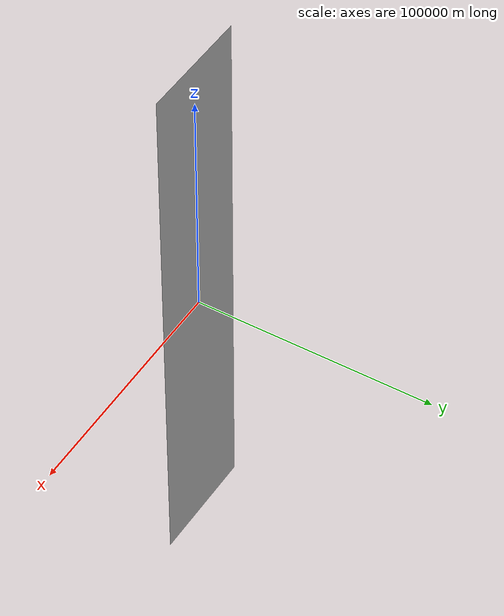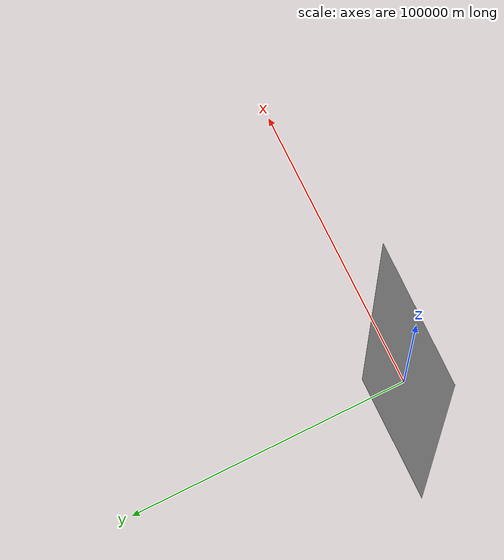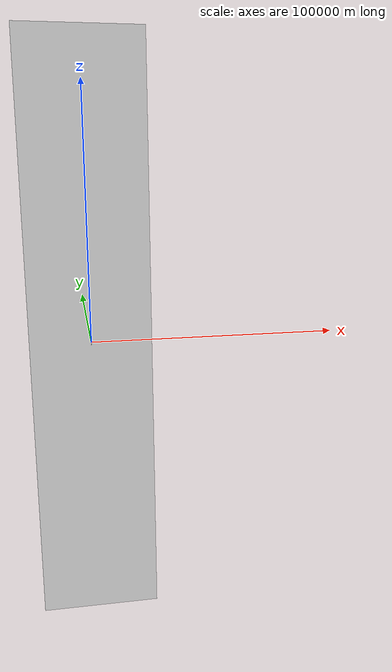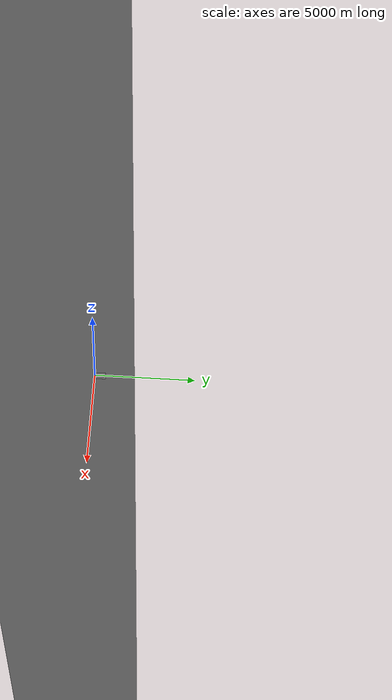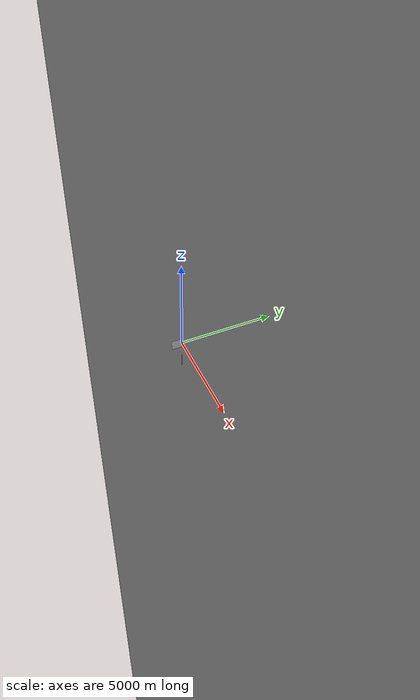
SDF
<sdf version="1.7">
 <world name="default">
  <gravity>0 0 -9.8</gravity>
  <physics name="default_physics" default="0" type="ode">
   <max_step_size>0.001</max_step_size>
   <real_time_factor>1</real_time_factor>
   <real_time_update_rate>1000</real_time_update_rate>
  </physics>
  <light name="Warehouse_CeilingLight_003" type="point">
   <pose>0 0 9 0 -0 0</pose>
   <diffuse>0.5 0.5 0.5 1</diffuse>
   <specular>0.2 0.2 0.2 1</specular>
   <attenuation>
    <range>80</range>
    <constant>0.3</constant>
    <linear>0.01</linear>
    <quadratic>0.001</quadratic>
   </attenuation>
   <direction>0.1 0.1 -1</direction>
   <spot><inner_angle>0</inner_angle><outer_angle>0</outer_angle><falloff>0</falloff></spot>
  </light>
  <model name="home_charging_station_A213696">
   <static>1</static>
   <pose>-4.62826 2.74389 0.033918 0 -0 0</pose>
   <link name="link">
    <collision name="collision"><geometry><box><size>1.2 1.2 0.0600006</size></box></geometry></collision>
    <visual name="visual">
     <geometry><box><size>1.2 1.2 0.0600006</size></box></geometry>
     <material><ambient>0 0.2 1 1</ambient><diffuse>0 0.2 1 1</diffuse></material>
    </visual>
   </link>
  </model>
  <model name="main_robot_lane_blue">
   <static>1</static>
   <pose>-2.6 -1 0.012 0 -0 0</pose>
   <link name="link">
    <visual name="visual">
     <geometry><box><size>0.1 8 0.02</size></box></geometry>
     <material><ambient>0 0.2 1 1</ambient><diffuse>0 0.2 1 1</diffuse></material>
    </visual>
   </link>
  </model>
  <model name="cross_robot_lane_green">
   <static>1</static>
   <pose>0 -5.2 0.012 0 -0 0</pose>
   <link name="link">
    <visual name="visual">
     <geometry><box><size>8.5 0.1 0.02</size></box></geometry>
     <material><ambient>0.1 0.9 0.1 1</ambient><diffuse>0.1 0.9 0.1 1</diffuse></material>
    </visual>
   </link>
  </model>
  <magnetic_field>6e-06 2.3e-05 -4.2e-05</magnetic_field>
  <atmosphere type="adiabatic"/>
  <scene><ambient>0.4 0.4 0.4 1</ambient><background>0.7 0.7 0.7 1</background><shadows>1</shadows></scene>
  <spherical_coordinates>
   <surface_model>EARTH_WGS84</surface_model>
   <latitude_deg>0</latitude_deg>
   <longitude_deg>0</longitude_deg>
   <elevation>0</elevation>
   <heading_deg>0</heading_deg>
  </spherical_coordinates>
  <model name="inventory_scan_zone_shelf_B_clone">
   <static>1</static>
   <pose>3.97129 -4.0426 0.034524 0 -0 0</pose>
   <link name="link">
    <collision name="collision"><geometry><box><size>1.4 1 0.000855</size></box></geometry></collision>
    <visual name="visual">
     <geometry><box><size>1.4 1 0.000855</size></box></geometry>
     <material><ambient>1 0.85 0 1</ambient><diffuse>1 0.85 0 1</diffuse></material>
    </visual>
   </link>
  </model>
  <model name="qr_home">
   <static>1</static>
   <link name="link">
    <visual name="board_visual">
     <geometry><box><size>0.01 0.5 0.5</size></box></geometry>
     <material>
      <script>
       <uri>model://qr_home/materials/scripts</uri>
       <uri>model://qr_home/materials/textures</uri>
       <name>QRBoard/qr_home</name>
      </script>
     </material>
    </visual>
   </link>
   <pose>-2.5536 2.7982 0.95242 0 -0 0</pose>
  </model>
  <model name="qr_stand">
   <static>1</static>
   <link name="link">
    <visual name="pole_visual">
     <pose>0 0 0.5 0 -0 0</pose>
     <geometry><cylinder><radius>0.03</radius><length>1</length></cylinder></geometry>
     <material><ambient>0.6 0.6 0.6 1</ambient><diffuse>0.6 0.6 0.6 1</diffuse></material>
    </visual>
   </link>
   <pose>-2.52555 2.78712 0 0 -0 0</pose>
  </model>
  <model name="qr_shelf_a">
   <static>1</static>
   <link name="link">
    <visual name="board_visual">
     <geometry><box><size>0.01 48403.2 237362</size></box></geometry>
     <material>
      <script>
       <uri>model://qr_shelf_a/materials/scripts</uri>
       <uri>model://qr_shelf_a/materials/textures</uri>
       <name>QRBoard/qr_shelf_a</name>
      </script>
     </material>
    </visual>
   </link>
   <pose>3.31965 -1.63787 1.25327 0 0 -1.57891</pose>
  </model>
  <model name="qr_shelf_b">
   <static>1</static>
   <link name="link">
    <visual name="board_visual">
     <geometry><box><size>0.01 44.3531 3219.21</size></box></geometry>
     <material>
      <script>
       <uri>model://qr_shelf_b/materials/scripts</uri>
       <uri>model://qr_shelf_b/materials/textures</uri>
       <name>QRBoard/qr_shelf_b</name>
      </script>
     </material>
    </visual>
   </link>
   <pose>3.53456 -2.57978 1.2205 0 -0 1.54479</pose>
  </model>
  <model name="qr_pickup">
   <static>1</static>
   <link name="link">
    <visual name="board_visual">
     <geometry><box><size>0.01 1069.23 567.656</size></box></geometry>
     <material>
      <script>
       <uri>model://qr_pickup/materials/scripts</uri>
       <uri>model://qr_pickup/materials/textures</uri>
       <name>QRBoard/qr_pickup</name>
      </script>
     </material>
    </visual>
   </link>
   <pose>-1.04812 -7.76857 1.04543 0 -0 0</pose>
  </model>
  <model name="qr_stand_0">
   <static>1</static>
   <link name="link">
    <visual name="pole_visual">
     <pose>0 0 0.5 0 -0 0</pose>
     <geometry><cylinder><radius>0.03</radius><length>1</length></cylinder></geometry>
     <material><ambient>0.6 0.6 0.6 1</ambient><diffuse>0.6 0.6 0.6 1</diffuse></material>
    </visual>
   </link>
   <pose>-1.08189 -7.76528 0 0 -0 0</pose>
  </model>
 </world>
</sdf>
